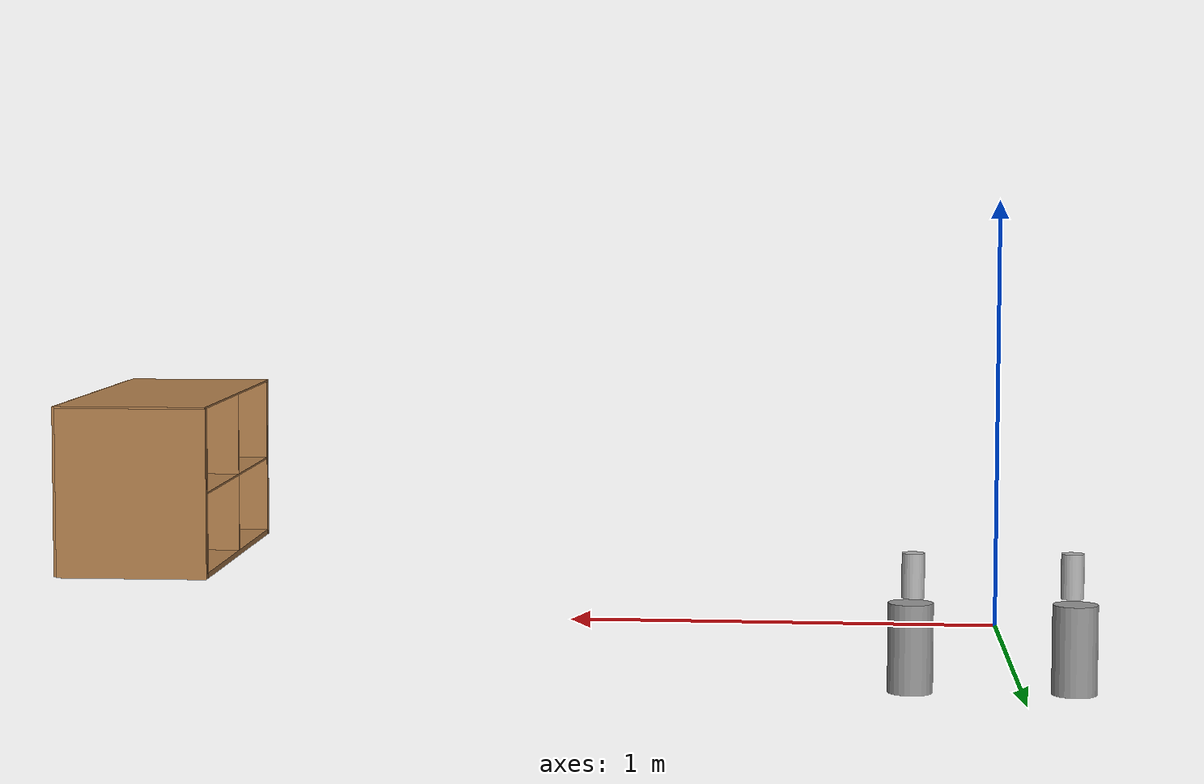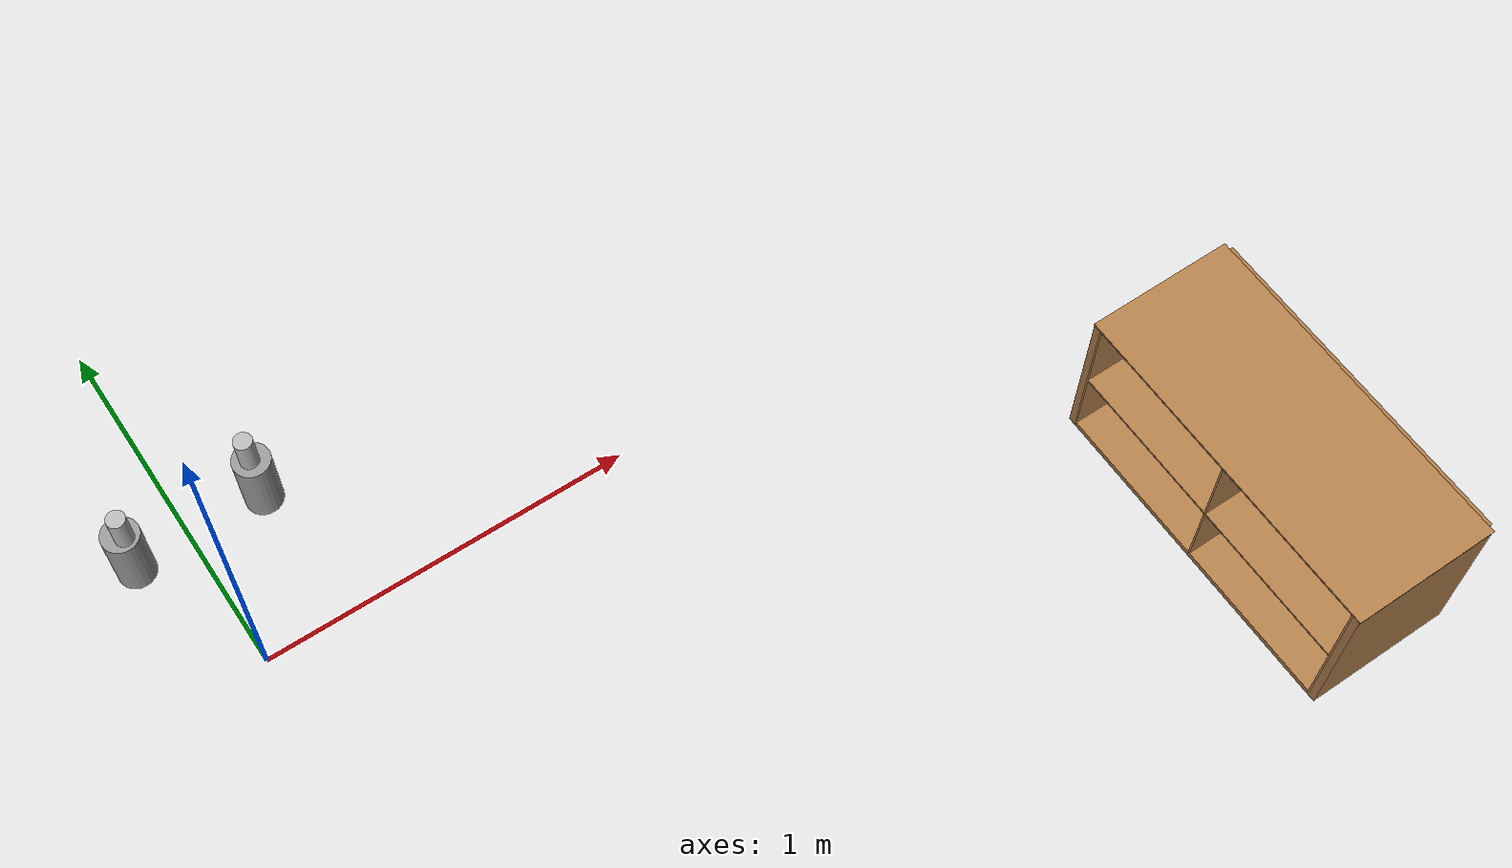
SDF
<?xml version='1.0'?>
<sdf version='1.6'>
  <model name='turtlebot3_rooms3'>
    <link name='link_1'>
      <pose frame=''>-0.14656 0.428645 0.02 0 -0 0</pose>
      <inertial>
        <mass>1</mass>
        <inertia>
          <ixx>0.145833</ixx>
          <ixy>0</ixy>
          <ixz>0</ixz>
          <iyy>0.145833</iyy>
          <iyz>0</iyz>
          <izz>0.125</izz>
        </inertia>
      </inertial>
      <self_collide>0</self_collide>
      <kinematic>0</kinematic>
      <visual name='visual'>
        <pose frame=''>0 0 0 0 -0 0</pose>
        <geometry>
          <cylinder>
            <radius>0.05</radius>
            <length>0.2</length>
          </cylinder>
        </geometry>
        <material>
          <lighting>1</lighting>
          <script>
            <uri>file://media/materials/scripts/gazebo.material</uri>
            <name>Gazebo/Grey</name>
          </script>
          <shader type='pixel'/>
          <ambient>0.3 0.3 0.3 1</ambient>
          <diffuse>0.7 0.7 0.7 1</diffuse>
          <specular>0.01 0.01 0.01 1</specular>
          <emissive>0 0 0 1</emissive>
        </material>
        <transparency>0</transparency>
        <cast_shadows>1</cast_shadows>
      </visual>
      <collision name='collision'>
        <laser_retro>0</laser_retro>
        <max_contacts>10</max_contacts>
        <pose frame=''>0 0 0 0 -0 0</pose>
        <geometry>
          <cylinder>
            <radius>0.05</radius>
            <length>0.2</length>
          </cylinder>
        </geometry>
        <surface>
          <friction>
            <ode>
              <mu>1</mu>
              <mu2>1</mu2>
              <fdir1>0 0 0</fdir1>
              <slip1>0</slip1>
              <slip2>0</slip2>
            </ode>
            <torsional>
              <coefficient>1</coefficient>
              <patch_radius>0</patch_radius>
              <surface_radius>0</surface_radius>
              <use_patch_radius>1</use_patch_radius>
              <ode>
                <slip>0</slip>
              </ode>
            </torsional>
          </friction>
          <bounce>
            <restitution_coefficient>0</restitution_coefficient>
            <threshold>1e+06</threshold>
          </bounce>
          <contact>
            <collide_without_contact>0</collide_without_contact>
            <collide_without_contact_bitmask>1</collide_without_contact_bitmask>
            <collide_bitmask>1</collide_bitmask>
            <ode>
              <soft_cfm>0</soft_cfm>
              <soft_erp>0.2</soft_erp>
              <kp>1e+13</kp>
              <kd>1</kd>
              <max_vel>0.01</max_vel>
              <min_depth>0</min_depth>
            </ode>
            <bullet>
              <split_impulse>1</split_impulse>
              <split_impulse_penetration_threshold>-0.01</split_impulse_penetration_threshold>
              <soft_cfm>0</soft_cfm>
              <soft_erp>0.2</soft_erp>
              <kp>1e+13</kp>
              <kd>1</kd>
            </bullet>
          </contact>
        </surface>
      </collision>
    </link>
    <link name='link_1_clone'>
      <pose frame=''>0.213439 0.434391 0.02 0 -0 0</pose>
      <inertial>
        <mass>1</mass>
        <inertia>
          <ixx>0.145833</ixx>
          <ixy>0</ixy>
          <ixz>0</ixz>
          <iyy>0.145833</iyy>
          <iyz>0</iyz>
          <izz>0.125</izz>
        </inertia>
      </inertial>
      <self_collide>0</self_collide>
      <kinematic>0</kinematic>
      <visual name='visual'>
        <pose frame=''>0 0 0 0 -0 0</pose>
        <geometry>
          <cylinder>
            <radius>0.05</radius>
            <length>0.2</length>
          </cylinder>
        </geometry>
        <material>
          <lighting>1</lighting>
          <script>
            <uri>file://media/materials/scripts/gazebo.material</uri>
            <name>Gazebo/Grey</name>
          </script>
          <shader type='pixel'/>
          <ambient>0.3 0.3 0.3 1</ambient>
          <diffuse>0.7 0.7 0.7 1</diffuse>
          <specular>0.01 0.01 0.01 1</specular>
          <emissive>0 0 0 1</emissive>
        </material>
        <transparency>0</transparency>
        <cast_shadows>1</cast_shadows>
      </visual>
      <collision name='collision'>
        <laser_retro>0</laser_retro>
        <max_contacts>10</max_contacts>
        <pose frame=''>0 0 0 0 -0 0</pose>
        <geometry>
          <cylinder>
            <radius>0.05</radius>
            <length>0.2</length>
          </cylinder>
        </geometry>
        <surface>
          <friction>
            <ode>
              <mu>1</mu>
              <mu2>1</mu2>
              <fdir1>0 0 0</fdir1>
              <slip1>0</slip1>
              <slip2>0</slip2>
            </ode>
            <torsional>
              <coefficient>1</coefficient>
              <patch_radius>0</patch_radius>
              <surface_radius>0</surface_radius>
              <use_patch_radius>1</use_patch_radius>
              <ode>
                <slip>0</slip>
              </ode>
            </torsional>
          </friction>
          <bounce>
            <restitution_coefficient>0</restitution_coefficient>
            <threshold>1e+06</threshold>
          </bounce>
          <contact>
            <collide_without_contact>0</collide_without_contact>
            <collide_without_contact_bitmask>1</collide_without_contact_bitmask>
            <collide_bitmask>1</collide_bitmask>
            <ode>
              <soft_cfm>0</soft_cfm>
              <soft_erp>0.2</soft_erp>
              <kp>1e+13</kp>
              <kd>1</kd>
              <max_vel>0.01</max_vel>
              <min_depth>0</min_depth>
            </ode>
            <bullet>
              <split_impulse>1</split_impulse>
              <split_impulse_penetration_threshold>-0.01</split_impulse_penetration_threshold>
              <soft_cfm>0</soft_cfm>
              <soft_erp>0.2</soft_erp>
              <kp>1e+13</kp>
              <kd>1</kd>
            </bullet>
          </contact>
        </surface>
      </collision>
    </link>
    <model name='bookshelf_i_0_0'>
      <link name='link'>
        <pose frame=''>0 0 0 0 0 -1.56022</pose>
        <inertial>
          <mass>1</mass>
        </inertial>
        <self_collide>0</self_collide>
        <kinematic>0</kinematic>
        <visual name='right_side'>
          <pose frame=''>-0.455 -0.195 0.225 0 -0 0</pose>
          <geometry>
            <box>
              <size>0.02 0.4 0.45</size>
            </box>
          </geometry>
          <material>
            <script>
              <uri>file://media/materials/scripts/gazebo.material</uri>
              <name>Gazebo/Wood</name>
            </script>
            <shader type='pixel'/>
            <ambient>1 1 1 1</ambient>
            <diffuse>1 1 1 1</diffuse>
            <specular>0 0 0 1</specular>
            <emissive>0 0 0 1</emissive>
          </material>
          <transparency>0</transparency>
          <cast_shadows>1</cast_shadows>
        </visual>
        <visual name='left_side_inner'>
          <pose frame=''>0.4425 -0.195 0.225 0 -0 0</pose>
          <geometry>
            <box>
              <size>0.005 0.4 0.45</size>
            </box>
          </geometry>
          <material>
            <script>
              <uri>file://media/materials/scripts/gazebo.material</uri>
              <name>Gazebo/Wood</name>
            </script>
            <shader type='pixel'/>
            <ambient>1 1 1 1</ambient>
            <diffuse>1 1 1 1</diffuse>
            <specular>0.2 0.2 0.2 1</specular>
            <emissive>0 0 0 1</emissive>
          </material>
          <transparency>0</transparency>
          <cast_shadows>1</cast_shadows>
        </visual>
        <visual name='bottom'>
          <pose frame=''>0 -0.195 0.0075 0 -0 0</pose>
          <geometry>
            <box>
              <size>0.88 0.4 0.015</size>
            </box>
          </geometry>
          <material>
            <script>
              <uri>file://media/materials/scripts/gazebo.material</uri>
              <name>Gazebo/Wood</name>
            </script>
            <shader type='pixel'/>
            <ambient>1 1 1 1</ambient>
            <diffuse>1 1 1 1</diffuse>
            <specular>0.2 0.2 0.2 1</specular>
            <emissive>0 0 0 1</emissive>
          </material>
          <transparency>0</transparency>
          <cast_shadows>1</cast_shadows>
        </visual>
        <visual name='back'>
          <pose frame=''>0 0.01 0.225 0 -0 0</pose>
          <geometry>
            <box>
              <size>0.9 0.01 0.45</size>
            </box>
          </geometry>
          <material>
            <script>
              <uri>file://media/materials/scripts/gazebo.material</uri>
              <name>Gazebo/Wood</name>
            </script>
            <shader type='pixel'/>
            <ambient>1 1 1 1</ambient>
            <diffuse>1 1 1 1</diffuse>
            <specular>0.2 0.2 0.2 1</specular>
            <emissive>0 0 0 1</emissive>
          </material>
          <transparency>0</transparency>
          <cast_shadows>1</cast_shadows>
        </visual>
        <visual name='top'>
          <pose frame=''>0 -0.195 0.45 0 -0 0</pose>
          <geometry>
            <box>
              <size>0.935 0.4 0.005</size>
            </box>
          </geometry>
          <material>
            <script>
              <uri>file://media/materials/scripts/gazebo.material</uri>
              <name>Gazebo/Wood</name>
            </script>
            <shader type='pixel'/>
            <ambient>1 1 1 1</ambient>
            <diffuse>1 1 1 1</diffuse>
            <specular>0.2 0.2 0.2 1</specular>
            <emissive>0 0 0 1</emissive>
          </material>
          <transparency>0</transparency>
          <cast_shadows>1</cast_shadows>
        </visual>
        <visual name='right_side_inner'>
          <pose frame=''>-0.4425 -0.195 0.225 0 -0 0</pose>
          <geometry>
            <box>
              <size>0.005 0.4 0.45</size>
            </box>
          </geometry>
          <material>
            <script>
              <uri>file://media/materials/scripts/gazebo.material</uri>
              <name>Gazebo/Wood</name>
            </script>
            <shader type='pixel'/>
            <ambient>1 1 1 1</ambient>
            <diffuse>1 1 1 1</diffuse>
            <specular>0.2 0.2 0.2 1</specular>
            <emissive>0 0 0 1</emissive>
          </material>
          <transparency>0</transparency>
          <cast_shadows>1</cast_shadows>
        </visual>
        <visual name='high_shelf'>
          <pose frame=''>0 -0.195 0.225 0 -0 0</pose>
          <geometry>
            <box>
              <size>0.88 0.4 0.005</size>
            </box>
          </geometry>
          <material>
            <script>
              <uri>file://media/materials/scripts/gazebo.material</uri>
              <name>Gazebo/Wood</name>
            </script>
            <shader type='pixel'/>
            <ambient>1 1 1 1</ambient>
            <diffuse>1 1 1 1</diffuse>
            <specular>0.2 0.2 0.2 1</specular>
            <emissive>0 0 0 1</emissive>
          </material>
          <transparency>0</transparency>
          <cast_shadows>1</cast_shadows>
        </visual>
        <visual name='left_side'>
          <pose frame=''>0.455 -0.195 0.225 0 -0 0</pose>
          <geometry>
            <box>
              <size>0.02 0.4 0.45</size>
            </box>
          </geometry>
          <material>
            <script>
              <uri>file://media/materials/scripts/gazebo.material</uri>
              <name>Gazebo/Wood</name>
            </script>
            <shader type='pixel'/>
            <ambient>1 1 1 1</ambient>
            <diffuse>1 1 1 1</diffuse>
            <specular>0 0 0 1</specular>
            <emissive>0 0 0 1</emissive>
          </material>
          <transparency>0</transparency>
          <cast_shadows>1</cast_shadows>
        </visual>
        <visual name='right_side_center'>
          <pose frame=''>0 -0.195 0.225 0 -0 0</pose>
          <geometry>
            <box>
              <size>0.005 0.4 0.45</size>
            </box>
          </geometry>
          <material>
            <script>
              <uri>file://media/materials/scripts/gazebo.material</uri>
              <name>Gazebo/Wood</name>
            </script>
            <shader type='pixel'/>
            <ambient>1 1 1 1</ambient>
            <diffuse>1 1 1 1</diffuse>
            <specular>0.2 0.2 0.2 1</specular>
            <emissive>0 0 0 1</emissive>
          </material>
          <transparency>0</transparency>
          <cast_shadows>1</cast_shadows>
        </visual>
        <collision name='top'>
          <laser_retro>0</laser_retro>
          <max_contacts>10</max_contacts>
          <pose frame=''>0 -0.195 0.45 0 -0 0</pose>
          <geometry>
            <box>
              <size>0.935 0.4 0.005</size>
            </box>
          </geometry>
          <surface>
            <friction>
              <ode>
                <mu>1</mu>
                <mu2>1</mu2>
                <fdir1>0 0 0</fdir1>
                <slip1>0</slip1>
                <slip2>0</slip2>
              </ode>
              <torsional>
                <coefficient>1</coefficient>
                <patch_radius>0</patch_radius>
                <surface_radius>0</surface_radius>
                <use_patch_radius>1</use_patch_radius>
                <ode>
                  <slip>0</slip>
                </ode>
              </torsional>
            </friction>
            <bounce>
              <restitution_coefficient>0</restitution_coefficient>
              <threshold>1e+06</threshold>
            </bounce>
            <contact>
              <collide_without_contact>0</collide_without_contact>
              <collide_without_contact_bitmask>1</collide_without_contact_bitmask>
              <collide_bitmask>1</collide_bitmask>
              <ode>
                <soft_cfm>0</soft_cfm>
                <soft_erp>0.2</soft_erp>
                <kp>1e+13</kp>
                <kd>1</kd>
                <max_vel>0.01</max_vel>
                <min_depth>0</min_depth>
              </ode>
              <bullet>
                <split_impulse>1</split_impulse>
                <split_impulse_penetration_threshold>-0.01</split_impulse_penetration_threshold>
                <soft_cfm>0</soft_cfm>
                <soft_erp>0.2</soft_erp>
                <kp>1e+13</kp>
                <kd>1</kd>
              </bullet>
            </contact>
          </surface>
        </collision>
        <collision name='right_side_center'>
          <laser_retro>0</laser_retro>
          <max_contacts>10</max_contacts>
          <pose frame=''>0 -0.195 0.225 0 -0 0</pose>
          <geometry>
            <box>
              <size>0.005 0.4 0.45</size>
            </box>
          </geometry>
          <surface>
            <friction>
              <ode>
                <mu>1</mu>
                <mu2>1</mu2>
                <fdir1>0 0 0</fdir1>
                <slip1>0</slip1>
                <slip2>0</slip2>
              </ode>
              <torsional>
                <coefficient>1</coefficient>
                <patch_radius>0</patch_radius>
                <surface_radius>0</surface_radius>
                <use_patch_radius>1</use_patch_radius>
                <ode>
                  <slip>0</slip>
                </ode>
              </torsional>
            </friction>
            <bounce>
              <restitution_coefficient>0</restitution_coefficient>
              <threshold>1e+06</threshold>
            </bounce>
            <contact>
              <collide_without_contact>0</collide_without_contact>
              <collide_without_contact_bitmask>1</collide_without_contact_bitmask>
              <collide_bitmask>1</collide_bitmask>
              <ode>
                <soft_cfm>0</soft_cfm>
                <soft_erp>0.2</soft_erp>
                <kp>1e+13</kp>
                <kd>1</kd>
                <max_vel>0.01</max_vel>
                <min_depth>0</min_depth>
              </ode>
              <bullet>
                <split_impulse>1</split_impulse>
                <split_impulse_penetration_threshold>-0.01</split_impulse_penetration_threshold>
                <soft_cfm>0</soft_cfm>
                <soft_erp>0.2</soft_erp>
                <kp>1e+13</kp>
                <kd>1</kd>
              </bullet>
            </contact>
          </surface>
        </collision>
        <collision name='back'>
          <laser_retro>0</laser_retro>
          <max_contacts>10</max_contacts>
          <pose frame=''>0 0.01 0.225 0 -0 0</pose>
          <geometry>
            <box>
              <size>0.9 0.01 0.45</size>
            </box>
          </geometry>
          <surface>
            <friction>
              <ode>
                <mu>1</mu>
                <mu2>1</mu2>
                <fdir1>0 0 0</fdir1>
                <slip1>0</slip1>
                <slip2>0</slip2>
              </ode>
              <torsional>
                <coefficient>1</coefficient>
                <patch_radius>0</patch_radius>
                <surface_radius>0</surface_radius>
                <use_patch_radius>1</use_patch_radius>
                <ode>
                  <slip>0</slip>
                </ode>
              </torsional>
            </friction>
            <bounce>
              <restitution_coefficient>0</restitution_coefficient>
              <threshold>1e+06</threshold>
            </bounce>
            <contact>
              <collide_without_contact>0</collide_without_contact>
              <collide_without_contact_bitmask>1</collide_without_contact_bitmask>
              <collide_bitmask>1</collide_bitmask>
              <ode>
                <soft_cfm>0</soft_cfm>
                <soft_erp>0.2</soft_erp>
                <kp>1e+13</kp>
                <kd>1</kd>
                <max_vel>0.01</max_vel>
                <min_depth>0</min_depth>
              </ode>
              <bullet>
                <split_impulse>1</split_impulse>
                <split_impulse_penetration_threshold>-0.01</split_impulse_penetration_threshold>
                <soft_cfm>0</soft_cfm>
                <soft_erp>0.2</soft_erp>
                <kp>1e+13</kp>
                <kd>1</kd>
              </bullet>
            </contact>
          </surface>
        </collision>
        <collision name='right_side_inner'>
          <laser_retro>0</laser_retro>
          <max_contacts>10</max_contacts>
          <pose frame=''>-0.4425 -0.195 0.225 0 -0 0</pose>
          <geometry>
            <box>
              <size>0.005 0.4 0.45</size>
            </box>
          </geometry>
          <surface>
            <friction>
              <ode>
                <mu>1</mu>
                <mu2>1</mu2>
                <fdir1>0 0 0</fdir1>
                <slip1>0</slip1>
                <slip2>0</slip2>
              </ode>
              <torsional>
                <coefficient>1</coefficient>
                <patch_radius>0</patch_radius>
                <surface_radius>0</surface_radius>
                <use_patch_radius>1</use_patch_radius>
                <ode>
                  <slip>0</slip>
                </ode>
              </torsional>
            </friction>
            <bounce>
              <restitution_coefficient>0</restitution_coefficient>
              <threshold>1e+06</threshold>
            </bounce>
            <contact>
              <collide_without_contact>0</collide_without_contact>
              <collide_without_contact_bitmask>1</collide_without_contact_bitmask>
              <collide_bitmask>1</collide_bitmask>
              <ode>
                <soft_cfm>0</soft_cfm>
                <soft_erp>0.2</soft_erp>
                <kp>1e+13</kp>
                <kd>1</kd>
                <max_vel>0.01</max_vel>
                <min_depth>0</min_depth>
              </ode>
              <bullet>
                <split_impulse>1</split_impulse>
                <split_impulse_penetration_threshold>-0.01</split_impulse_penetration_threshold>
                <soft_cfm>0</soft_cfm>
                <soft_erp>0.2</soft_erp>
                <kp>1e+13</kp>
                <kd>1</kd>
              </bullet>
            </contact>
          </surface>
        </collision>
        <collision name='bottom'>
          <laser_retro>0</laser_retro>
          <max_contacts>10</max_contacts>
          <pose frame=''>0 -0.195 0.0075 0 -0 0</pose>
          <geometry>
            <box>
              <size>0.88 0.4 0.015</size>
            </box>
          </geometry>
          <surface>
            <friction>
              <ode>
                <mu>1</mu>
                <mu2>1</mu2>
                <fdir1>0 0 0</fdir1>
                <slip1>0</slip1>
                <slip2>0</slip2>
              </ode>
              <torsional>
                <coefficient>1</coefficient>
                <patch_radius>0</patch_radius>
                <surface_radius>0</surface_radius>
                <use_patch_radius>1</use_patch_radius>
                <ode>
                  <slip>0</slip>
                </ode>
              </torsional>
            </friction>
            <bounce>
              <restitution_coefficient>0</restitution_coefficient>
              <threshold>1e+06</threshold>
            </bounce>
            <contact>
              <collide_without_contact>0</collide_without_contact>
              <collide_without_contact_bitmask>1</collide_without_contact_bitmask>
              <collide_bitmask>1</collide_bitmask>
              <ode>
                <soft_cfm>0</soft_cfm>
                <soft_erp>0.2</soft_erp>
                <kp>1e+13</kp>
                <kd>1</kd>
                <max_vel>0.01</max_vel>
                <min_depth>0</min_depth>
              </ode>
              <bullet>
                <split_impulse>1</split_impulse>
                <split_impulse_penetration_threshold>-0.01</split_impulse_penetration_threshold>
                <soft_cfm>0</soft_cfm>
                <soft_erp>0.2</soft_erp>
                <kp>1e+13</kp>
                <kd>1</kd>
              </bullet>
            </contact>
          </surface>
        </collision>
        <collision name='high_shelf'>
          <laser_retro>0</laser_retro>
          <max_contacts>10</max_contacts>
          <pose frame=''>0 -0.195 0.225 0 -0 0</pose>
          <geometry>
            <box>
              <size>0.88 0.4 0.005</size>
            </box>
          </geometry>
          <surface>
            <friction>
              <ode>
                <mu>1</mu>
                <mu2>1</mu2>
                <fdir1>0 0 0</fdir1>
                <slip1>0</slip1>
                <slip2>0</slip2>
              </ode>
              <torsional>
                <coefficient>1</coefficient>
                <patch_radius>0</patch_radius>
                <surface_radius>0</surface_radius>
                <use_patch_radius>1</use_patch_radius>
                <ode>
                  <slip>0</slip>
                </ode>
              </torsional>
            </friction>
            <bounce>
              <restitution_coefficient>0</restitution_coefficient>
              <threshold>1e+06</threshold>
            </bounce>
            <contact>
              <collide_without_contact>0</collide_without_contact>
              <collide_without_contact_bitmask>1</collide_without_contact_bitmask>
              <collide_bitmask>1</collide_bitmask>
              <ode>
                <soft_cfm>0</soft_cfm>
                <soft_erp>0.2</soft_erp>
                <kp>1e+13</kp>
                <kd>1</kd>
                <max_vel>0.01</max_vel>
                <min_depth>0</min_depth>
              </ode>
              <bullet>
                <split_impulse>1</split_impulse>
                <split_impulse_penetration_threshold>-0.01</split_impulse_penetration_threshold>
                <soft_cfm>0</soft_cfm>
                <soft_erp>0.2</soft_erp>
                <kp>1e+13</kp>
                <kd>1</kd>
              </bullet>
            </contact>
          </surface>
        </collision>
        <collision name='left_side_inner'>
          <laser_retro>0</laser_retro>
          <max_contacts>10</max_contacts>
          <pose frame=''>0.4425 -0.195 0.225 0 -0 0</pose>
          <geometry>
            <box>
              <size>0.005 0.4 0.45</size>
            </box>
          </geometry>
          <surface>
            <friction>
              <ode>
                <mu>1</mu>
                <mu2>1</mu2>
                <fdir1>0 0 0</fdir1>
                <slip1>0</slip1>
                <slip2>0</slip2>
              </ode>
              <torsional>
                <coefficient>1</coefficient>
                <patch_radius>0</patch_radius>
                <surface_radius>0</surface_radius>
                <use_patch_radius>1</use_patch_radius>
                <ode>
                  <slip>0</slip>
                </ode>
              </torsional>
            </friction>
            <bounce>
              <restitution_coefficient>0</restitution_coefficient>
              <threshold>1e+06</threshold>
            </bounce>
            <contact>
              <collide_without_contact>0</collide_without_contact>
              <collide_without_contact_bitmask>1</collide_without_contact_bitmask>
              <collide_bitmask>1</collide_bitmask>
              <ode>
                <soft_cfm>0</soft_cfm>
                <soft_erp>0.2</soft_erp>
                <kp>1e+13</kp>
                <kd>1</kd>
                <max_vel>0.01</max_vel>
                <min_depth>0</min_depth>
              </ode>
              <bullet>
                <split_impulse>1</split_impulse>
                <split_impulse_penetration_threshold>-0.01</split_impulse_penetration_threshold>
                <soft_cfm>0</soft_cfm>
                <soft_erp>0.2</soft_erp>
                <kp>1e+13</kp>
                <kd>1</kd>
              </bullet>
            </contact>
          </surface>
        </collision>
        <collision name='right_side'>
          <laser_retro>0</laser_retro>
          <max_contacts>10</max_contacts>
          <pose frame=''>-0.455 -0.195 0.225 0 -0 0</pose>
          <geometry>
            <box>
              <size>0.02 0.4 0.45</size>
            </box>
          </geometry>
          <surface>
            <friction>
              <ode>
                <mu>1</mu>
                <mu2>1</mu2>
                <fdir1>0 0 0</fdir1>
                <slip1>0</slip1>
                <slip2>0</slip2>
              </ode>
              <torsional>
                <coefficient>1</coefficient>
                <patch_radius>0</patch_radius>
                <surface_radius>0</surface_radius>
                <use_patch_radius>1</use_patch_radius>
                <ode>
                  <slip>0</slip>
                </ode>
              </torsional>
            </friction>
            <bounce>
              <restitution_coefficient>0</restitution_coefficient>
              <threshold>1e+06</threshold>
            </bounce>
            <contact>
              <collide_without_contact>0</collide_without_contact>
              <collide_without_contact_bitmask>1</collide_without_contact_bitmask>
              <collide_bitmask>1</collide_bitmask>
              <ode>
                <soft_cfm>0</soft_cfm>
                <soft_erp>0.2</soft_erp>
                <kp>1e+13</kp>
                <kd>1</kd>
                <max_vel>0.01</max_vel>
                <min_depth>0</min_depth>
              </ode>
              <bullet>
                <split_impulse>1</split_impulse>
                <split_impulse_penetration_threshold>-0.01</split_impulse_penetration_threshold>
                <soft_cfm>0</soft_cfm>
                <soft_erp>0.2</soft_erp>
                <kp>1e+13</kp>
                <kd>1</kd>
              </bullet>
            </contact>
          </surface>
        </collision>
        <collision name='left_side'>
          <laser_retro>0</laser_retro>
          <max_contacts>10</max_contacts>
          <pose frame=''>0.455 -0.195 0.225 0 -0 0</pose>
          <geometry>
            <box>
              <size>0.02 0.4 0.45</size>
            </box>
          </geometry>
          <surface>
            <friction>
              <ode>
                <mu>1</mu>
                <mu2>1</mu2>
                <fdir1>0 0 0</fdir1>
                <slip1>0</slip1>
                <slip2>0</slip2>
              </ode>
              <torsional>
                <coefficient>1</coefficient>
                <patch_radius>0</patch_radius>
                <surface_radius>0</surface_radius>
                <use_patch_radius>1</use_patch_radius>
                <ode>
                  <slip>0</slip>
                </ode>
              </torsional>
            </friction>
            <bounce>
              <restitution_coefficient>0</restitution_coefficient>
              <threshold>1e+06</threshold>
            </bounce>
            <contact>
              <collide_without_contact>0</collide_without_contact>
              <collide_without_contact_bitmask>1</collide_without_contact_bitmask>
              <collide_bitmask>1</collide_bitmask>
              <ode>
                <soft_cfm>0</soft_cfm>
                <soft_erp>0.2</soft_erp>
                <kp>1e+13</kp>
                <kd>1</kd>
                <max_vel>0.01</max_vel>
                <min_depth>0</min_depth>
              </ode>
              <bullet>
                <split_impulse>1</split_impulse>
                <split_impulse_penetration_threshold>-0.01</split_impulse_penetration_threshold>
                <soft_cfm>0</soft_cfm>
                <soft_erp>0.2</soft_erp>
                <kp>1e+13</kp>
                <kd>1</kd>
              </bullet>
            </contact>
          </surface>
        </collision>
      </link>
      <static>1</static>
      <allow_auto_disable>1</allow_auto_disable>
      <pose frame=''>2.40132 -1.00159 0 0 -0 0</pose>
    </model>
    <model name='small_beer'>
      <link name='link'>
        <pose frame=''>0.2 0 0 0 -0 1.775</pose>
        <inertial>
          <mass>0.001</mass>
          <inertia>
            <ixx>4.7583e-05</ixx>
            <ixy>0</ixy>
            <ixz>0</ixz>
            <iyy>4.7583e-05</iyy>
            <iyz>0</iyz>
            <izz>3.125e-06</izz>
          </inertia>
        </inertial>
        <collision name='collision'>
          <geometry>
            <cylinder>
              <radius>0.025</radius>
              <length>0.1</length>
            </cylinder>
          </geometry>
          <surface>
            <friction>
              <ode>
                <mu>1e+06</mu>
                <mu2>10000</mu2>
              </ode>
              <torsional>
                <ode/>
              </torsional>
            </friction>
            <contact>
              <ode>
                <kp>1e+06</kp>
                <kd>100</kd>
                <max_vel>1</max_vel>
                <min_depth>0.002</min_depth>
              </ode>
            </contact>
            <bounce/>
          </surface>
          <max_contacts>10</max_contacts>
        </collision>
        <visual name='visual'>
          <geometry>
            <cylinder>
              <radius>0.025</radius>
              <length>0.1</length>
            </cylinder>
          </geometry>
          <material>
            <script>
              <uri>model://turtlebot3_rooms3/small_beer/materials/scripts</uri>
              <uri>model://turtlebot3_rooms3/small_beer/materials/textures</uri>
              <name>Beer/Diffuse</name>
            </script>
          </material>
        </visual>
        <self_collide>0</self_collide>
        <kinematic>0</kinematic>
      </link>
      <pose frame=''>0.05916 0.40817 0.18 0 -0 3.14</pose>
    </model>
    <model name='small_beer_clone'>
      <link name='link'>
        <pose frame=''>0.2 0 0 0 -0 1.275</pose>
        <inertial>
          <mass>0.001</mass>
          <inertia>
            <ixx>4.7583e-05</ixx>
            <ixy>0</ixy>
            <ixz>0</ixz>
            <iyy>4.7583e-05</iyy>
            <iyz>0</iyz>
            <izz>3.125e-06</izz>
          </inertia>
        </inertial>
        <collision name='collision'>
          <geometry>
            <cylinder>
              <radius>0.025</radius>
              <length>0.1</length>
            </cylinder>
          </geometry>
          <surface>
            <friction>
              <ode>
                <mu>1e+06</mu>
                <mu2>10000</mu2>
              </ode>
              <torsional>
                <ode/>
              </torsional>
            </friction>
            <contact>
              <ode>
                <kp>1e+06</kp>
                <kd>100</kd>
                <max_vel>1</max_vel>
                <min_depth>0.002</min_depth>
              </ode>
            </contact>
            <bounce/>
          </surface>
          <max_contacts>10</max_contacts>
        </collision>
        <visual name='visual'>
          <geometry>
            <cylinder>
              <radius>0.025</radius>
              <length>0.1</length>
            </cylinder>
          </geometry>
          <material>
            <script>
              <uri>model://turtlebot3_rooms3/fish/materials/scripts</uri>
              <uri>model://turtlebot3_rooms3/fish/materials/textures</uri>
              <name>fish/Diffuse</name>
            </script>
          </material>
        </visual>
        <self_collide>0</self_collide>
        <kinematic>0</kinematic>
      </link>
      <pose frame=''>0.408643 0.42738 0.18 0 -0 3.14</pose>
    </model>
    <static>1</static>
    <allow_auto_disable>0</allow_auto_disable>
  </model>
</sdf>
